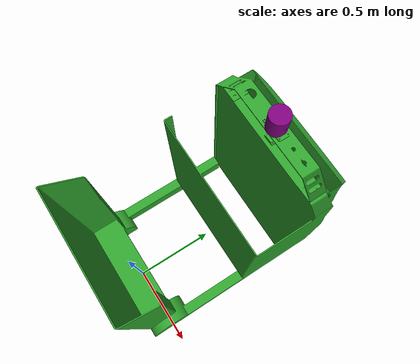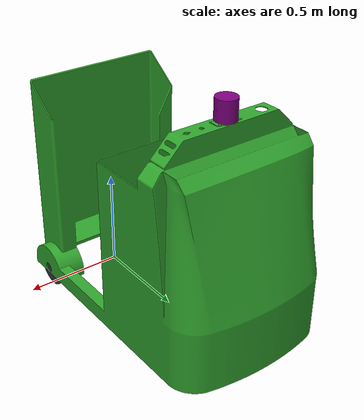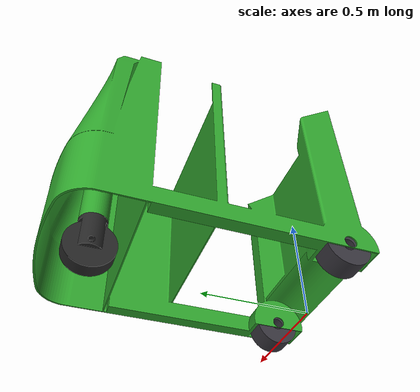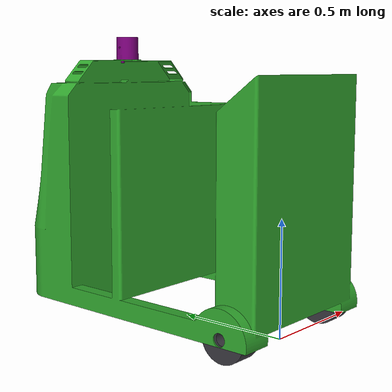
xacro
<?xml version="1.0"?>
<robot xmlns:xacro="http://www.ros.org/wiki/xacro" name="tugger">

    <!-- =========================
         COMPONENT FILES
         ========================= -->

<xacro:include filename="$(find tugger_description)/urdf/baselink.urdf.xacro"/>
<xacro:include filename="$(find tugger_description)/urdf/driving_front_wheel.urdf.xacro"/>
<xacro:include filename="$(find tugger_description)/urdf/rear_wheel.urdf.xacro"/>
<xacro:include filename="$(find tugger_description)/urdf/lidar.urdf.xacro"/>
<xacro:include filename="$(find tugger_description)/urdf/steering.urdf.xacro"/>
    <link name="base_footprint"/>
    <!-- =========================
         FRONT STEERING SHAFT
         ========================= -->
    <xacro:base_link
        parent="base_footprint"
        xyz="0 0 0.1"
        rpy="0 0 0"/>

    <xacro:steering_shaft
        parent="base_link"
        xyz="0 0.985 0.186787"
        rpy="-1.5708 0 0"/>

    <!-- =========================
         FRONT DRIVING WHEEL
         ========================= -->

    <xacro:driving_front_wheel
        name="driving_front_wheel"
        parent="steering_link"
        xyz="0 0.170 0"
        rpy="0 0 0"/>

    <!-- =========================
         REAR LEFT WHEEL
         ========================= -->

    <xacro:rear_wheel
        name="rear_left_wheel"
        parent="base_link"
        xyz="-0.282 0 0.0 "
        rpy="0 0 1.5708"/>

    <!-- =========================
         REAR RIGHT WHEEL
         ========================= -->

    <xacro:rear_wheel
        name="rear_right_wheel"
        parent="base_link"
        xyz="0.382 0 0.0"
        rpy="0 0 1.5708"/>

    <!-- =========================
         ROBOSENSE LIDAR
         ========================= -->

    <xacro:lidar
        parent="base_link"
        xyz="0 0.87 1.040785"
        rpy="1.5708 0 0"/>

</robot>

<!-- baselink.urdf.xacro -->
<robot xmlns:xacro="http://www.ros.org/wiki/xacro" name="baselink">
    <xacro:macro name="base_link" params="parent xyz rpy">

        <link name="base_link">
            <inertial>
                <origin xyz="0.0 0.998 0.629691" rpy="0 0 0"/>
                <mass value="80.0"/>
                <inertia ixx="12.0" ixy="0.0" ixz="0.0"
                         iyy="15.0" iyz="0.0"
                         izz="12.0"/>
            </inertial>
            <visual>
                <origin xyz="0.0 0.998 0.629691" rpy="1.5708 0 0"/>
                <geometry>
                    <mesh filename="package://tugger_description/meshes/Tugger_Body_updated.stl" scale="0.001 0.001 0.001"/>
                </geometry>

                <material name="body_color">
                    <color rgba="0.19 0.65 0.18 1.0"/>
                </material>
            </visual>

            <collision>
                <origin xyz="0.0 0.998 0.629691" rpy="1.5708 0 0"/>
                <geometry>
                    <mesh filename="package://tugger_description/meshes/Tugger_Body_updated.stl" scale="0.001 0.001 0.001"/>
                </geometry>
            </collision>
        </link>
        <joint name="base_joint" type="fixed">
            <parent link="${parent}"/>
            <child link="base_link"/>
            <origin xyz="${xyz}" rpy="${rpy}"/>
        </joint>
    </xacro:macro>
</robot>

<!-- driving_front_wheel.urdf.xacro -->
<robot xmlns:xacro="http://www.ros.org/wiki/xacro" name="driving_front_wheel">

    <xacro:macro name="driving_front_wheel" params="name parent xyz rpy">

        <link name="${name}_link">
            <inertial>
                <origin xyz="0 0 0" rpy="0 0 0"/>
                <mass value="4.0"/>
                <inertia ixx="0.03" ixy="0.0" ixz="0.0"
                         iyy="0.03" iyz="0.0"
                         izz="0.03"/>
            </inertial>
            <visual>
                <origin xyz="0 0 0" rpy="0 0 0"/>
                <geometry>
                    <mesh filename="package://tugger_description/meshes/driving_wheel.stl"/>
                </geometry>
                <material name="driving_wheel_color">
                    <color rgba="0.15 0.15 0.15 1.0"/>
                </material>
            </visual>

            <collision>
                <geometry>
                    <mesh  filename="package://tugger_description/meshes/driving_wheel.stl"/>
                </geometry>
            </collision>
        </link>

        <joint name="${name}_joint" type="continuous">
            <parent link="${parent}"/>
            <child link="${name}_link"/>
            <origin xyz="${xyz}" rpy="${rpy}"/>
            <axis xyz="1 0 0"/>
        </joint>

    </xacro:macro>

</robot>

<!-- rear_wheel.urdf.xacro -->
<robot xmlns:xacro="http://www.ros.org/wiki/xacro" name="rear_wheel">

    <xacro:macro name="rear_wheel" params="name parent xyz rpy">

        <link name="${name}_link">
            <inertial>
                <origin xyz="0 0 0" rpy="0 0 0"/>
                <mass value="3.0"/>
                <inertia ixx="0.02" ixy="0.0" ixz="0.0"
                         iyy="0.02" iyz="0.0"
                         izz="0.02"/>
            </inertial>
            <visual>
                <geometry>
                    <mesh scale="0.001 0.001 0.001" filename="package://tugger_description/meshes/rear_wheel.stl"/>
                </geometry>
                <material name="rear_wheel_color">
                    <color rgba="0.22 0.21 0.24 1.0"/>
                </material>
            </visual>

            <collision>
                <geometry>
                    <mesh scale="0.001 0.001 0.001" filename="package://tugger_description/meshes/rear_wheel.stl"/>
                </geometry>
            </collision>
        </link>

        <joint name="${name}_joint" type="continuous">
            <parent link="${parent}"/>
            <child link="${name}_link"/>
            <origin xyz="${xyz}" rpy="${rpy}"/>
            <axis xyz="0 1 0"/>
        </joint>

    </xacro:macro>

</robot>

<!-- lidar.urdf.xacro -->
<robot xmlns:xacro="http://www.ros.org/wiki/xacro" name="lidar">

    <xacro:macro name="lidar" params="parent xyz rpy">

        <link name="lidar_link">
            <inertial>
                <origin xyz="0 0 0" rpy="0 0 0"/>
                <mass value="0.8"/>
                <inertia ixx="0.001" ixy="0.0" ixz="0.0"
                         iyy="0.001" iyz="0.0"
                         izz="0.001"/>
            </inertial>
            <visual>
                <geometry>
                    <mesh scale="0.001 0.001 0.001" filename="package://tugger_description/meshes/robosense_lidar.stl"/>
                </geometry>
                <material name="lidar_color">
                    <color rgba="0.5 0 0.5 1.0"/>
                </material>
            </visual>

            <collision>
                <geometry>
                    <mesh scale="0.001 0.001 0.001" filename="package://tugger_description/meshes/robosense_lidar.stl"/>
                </geometry>
            </collision>
        </link>

        <joint name="lidar_joint" type="fixed">
            <parent link="${parent}"/>
            <child link="lidar_link"/>
            <origin xyz="${xyz}" rpy="${rpy}"/>
        </joint>

    </xacro:macro>

</robot>

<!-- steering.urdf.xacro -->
<robot xmlns:xacro="http://www.ros.org/wiki/xacro" name="driving_front_wheel">

    <xacro:macro name="steering_shaft" params="parent xyz rpy">

        <link name="steering_link">
            <inertial>
                <origin xyz="0 0 0" rpy="0 0 0"/>
                <mass value="5.0"/>
                <inertia ixx="0.05" ixy="0.0" ixz="0.0"
                         iyy="0.05" iyz="0.0"
                         izz="0.05"/>
            </inertial>
            <visual>
                <geometry>
                    <mesh scale="0.001 0.001 0.001" filename="package://tugger_description/meshes/steering_shaft.stl"/>
                </geometry>
                <material name="steering_color">
                    <color rgba="0.15 0.15 0.15 1.0"/>
                </material>
            </visual>

            <collision>
                <geometry>
                    <mesh scale="0.001 0.001 0.001" filename="package://tugger_description/meshes/steering_shaft.stl"/>
                </geometry>
            </collision>
        </link>

        <joint name="steering_joint" type="continuous">
            <parent link="${parent}"/>
            <child link="steering_link"/>
            <origin xyz="${xyz}" rpy="${rpy}"/>
            <axis xyz="0 1 0"/>
        </joint>

    </xacro:macro>

</robot>
